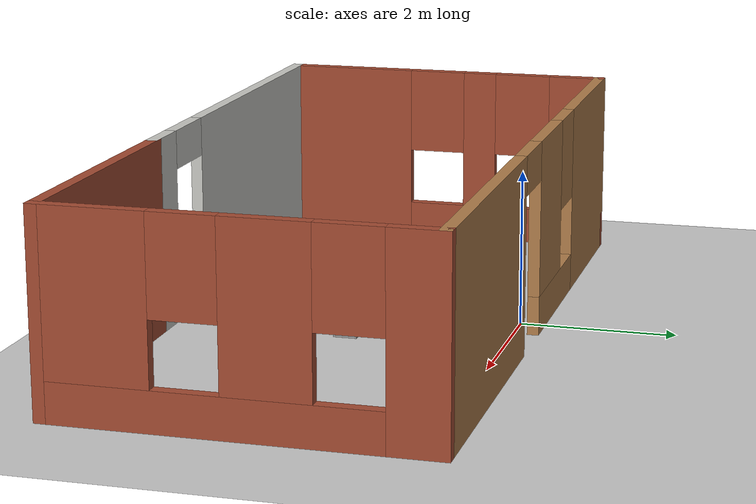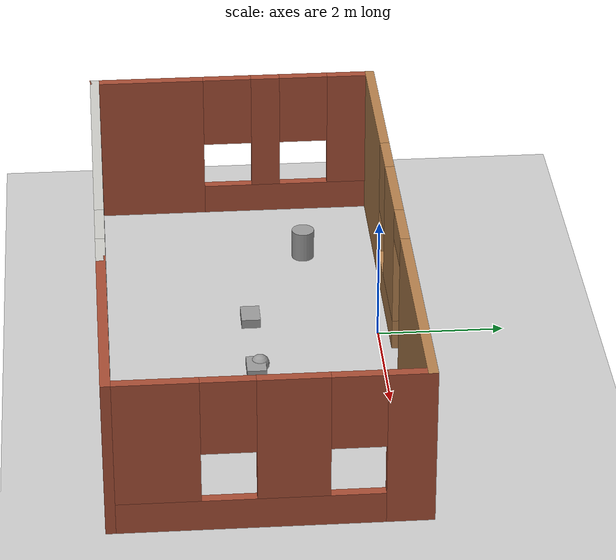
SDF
<sdf version="1.6">
 <world name="default">
  <light name="sun" type="directional">
   <pose>0 0 10 0 -0 0</pose>
   <diffuse>0.8 0.8 0.8 1</diffuse>
   <specular>0.1 0.1 0.1 1</specular>
   <attenuation>
    <range>1000</range>
    <constant>0.9</constant>
    <linear>0.01</linear>
    <quadratic>0.001</quadratic>
   </attenuation>
   <direction>-0.5 0.5 -1</direction>
  </light>
  <model name="ground_plane">
   <static>1</static>
   <link name="link">
    <collision name="collision">
     <geometry><plane><normal>0 0 1</normal><size>100 100</size></plane></geometry>
     <surface><friction><ode><mu>100</mu><mu2>50</mu2></ode></friction></surface>
    </collision>
    <visual name="visual">
     <cast_shadows>0</cast_shadows>
     <geometry><plane><normal>0 0 1</normal><size>100 100</size></plane></geometry>
     <material>
      <script><uri>file://media/materials/scripts/gazebo.material</uri><name>Gazebo/Grey</name></script>
     </material>
    </visual>
   </link>
  </model>
  <gravity>0 0 -9.8</gravity>
  <magnetic_field>6e-06 2.3e-05 -4.2e-05</magnetic_field>
  <atmosphere type="adiabatic"/>
  <physics name="default_physics" default="0" type="ode">
   <max_step_size>0.001</max_step_size>
   <real_time_factor>1</real_time_factor>
   <real_time_update_rate>1000</real_time_update_rate>
  </physics>
  <scene><ambient>0.4 0.4 0.4 1</ambient><background>0.7 0.7 0.7 1</background><shadows>1</shadows></scene>
  <spherical_coordinates>
   <surface_model>EARTH_WGS84</surface_model>
   <latitude_deg>0</latitude_deg>
   <longitude_deg>0</longitude_deg>
   <elevation>0</elevation>
   <heading_deg>0</heading_deg>
  </spherical_coordinates>
  <model name="Room_on">
   <pose>0.425 -2.05 0 0 -0 0</pose>
   <link name="Wall_1">
    <pose>-1.75 -2.3 0 0 -0 0</pose>
    <visual name="Wall_1_Visual_0">
     <pose>-0.783904 0 1.25 0 -0 0</pose>
     <geometry><box><size>4.43219 0.15 2.5</size></box></geometry>
     <material>
      <script><uri>file://media/materials/scripts/gazebo.material</uri><name>Gazebo/CeilingTiled</name></script>
      <ambient>1 1 1 1</ambient>
     </material>
    </visual>
    <collision name="Wall_1_Collision_0">
     <geometry><box><size>4.43219 0.15 2.5</size></box></geometry>
     <pose>-0.783904 0 1.25 0 -0 0</pose>
    </collision>
    <visual name="Wall_1_Visual_1">
     <pose>2.6661 0 1.25 0 -0 0</pose>
     <geometry><box><size>0.667807 0.15 2.5</size></box></geometry>
     <material>
      <script><uri>file://media/materials/scripts/gazebo.material</uri><name>Gazebo/CeilingTiled</name></script>
      <ambient>1 1 1 1</ambient>
     </material>
    </visual>
    <collision name="Wall_1_Collision_1">
     <geometry><box><size>0.667807 0.15 2.5</size></box></geometry>
     <pose>2.6661 0 1.25 0 -0 0</pose>
    </collision>
    <visual name="Wall_1_Visual_2">
     <pose>1.88219 0 2.25 0 -0 0</pose>
     <geometry><box><size>0.9 0.15 0.5</size></box></geometry>
     <material>
      <script><uri>file://media/materials/scripts/gazebo.material</uri><name>Gazebo/CeilingTiled</name></script>
      <ambient>1 1 1 1</ambient>
     </material>
    </visual>
    <collision name="Wall_1_Collision_2">
     <geometry><box><size>0.9 0.15 0.5</size></box></geometry>
     <pose>1.88219 0 2.25 0 -0 0</pose>
    </collision>
   </link>
   <link name="Wall_10">
    <pose>4.675 0 0 0 0 -1.5708</pose>
    <visual name="Wall_10_Visual_0">
     <pose>-2.02052 0 1.25 0 -0 0</pose>
     <geometry><box><size>0.708964 0.15 2.5</size></box></geometry>
     <material>
      <script><uri>file://media/materials/scripts/gazebo.material</uri><name>Gazebo/Bricks</name></script>
      <ambient>1 1 1 1</ambient>
     </material>
    </visual>
    <collision name="Wall_10_Collision_0">
     <geometry><box><size>0.708964 0.15 2.5</size></box></geometry>
     <pose>-2.02052 0 1.25 0 -0 0</pose>
    </collision>
    <visual name="Wall_10_Visual_1">
     <pose>0.354482 0 0.25 0 -0 0</pose>
     <geometry><box><size>4.04104 0.15 0.5</size></box></geometry>
     <material>
      <script><uri>file://media/materials/scripts/gazebo.material</uri><name>Gazebo/Bricks</name></script>
      <ambient>1 1 1 1</ambient>
     </material>
    </visual>
    <collision name="Wall_10_Collision_1">
     <geometry><box><size>4.04104 0.15 0.5</size></box></geometry>
     <pose>0.354482 0 0.25 0 -0 0</pose>
    </collision>
    <visual name="Wall_10_Visual_2">
     <pose>-0.339063 0 1.5 0 -0 0</pose>
     <geometry><box><size>1.05395 0.15 2</size></box></geometry>
     <material>
      <script><uri>file://media/materials/scripts/gazebo.material</uri><name>Gazebo/Bricks</name></script>
      <ambient>1 1 1 1</ambient>
     </material>
    </visual>
    <collision name="Wall_10_Collision_2">
     <geometry><box><size>1.05395 0.15 2</size></box></geometry>
     <pose>-0.339063 0 1.5 0 -0 0</pose>
    </collision>
    <visual name="Wall_10_Visual_3">
     <pose>1.68145 0 1.5 0 -0 0</pose>
     <geometry><box><size>1.38709 0.15 2</size></box></geometry>
     <material>
      <script><uri>file://media/materials/scripts/gazebo.material</uri><name>Gazebo/Bricks</name></script>
      <ambient>1 1 1 1</ambient>
     </material>
    </visual>
    <collision name="Wall_10_Collision_3">
     <geometry><box><size>1.38709 0.15 2</size></box></geometry>
     <pose>1.68145 0 1.5 0 -0 0</pose>
    </collision>
    <visual name="Wall_10_Visual_4">
     <pose>-1.26604 0 1.9 0 -0 0</pose>
     <geometry><box><size>0.8 0.15 1.2</size></box></geometry>
     <material>
      <script><uri>file://media/materials/scripts/gazebo.material</uri><name>Gazebo/Bricks</name></script>
      <ambient>1 1 1 1</ambient>
     </material>
    </visual>
    <collision name="Wall_10_Collision_4">
     <geometry><box><size>0.8 0.15 1.2</size></box></geometry>
     <pose>-1.26604 0 1.9 0 -0 0</pose>
    </collision>
    <visual name="Wall_10_Visual_5">
     <pose>0.58791 0 1.9 0 -0 0</pose>
     <geometry><box><size>0.8 0.15 1.2</size></box></geometry>
     <material>
      <script><uri>file://media/materials/scripts/gazebo.material</uri><name>Gazebo/Bricks</name></script>
      <ambient>1 1 1 1</ambient>
     </material>
    </visual>
    <collision name="Wall_10_Collision_5">
     <geometry><box><size>0.8 0.15 1.2</size></box></geometry>
     <pose>0.58791 0 1.9 0 -0 0</pose>
    </collision>
   </link>
   <link name="Wall_11">
    <collision name="Wall_11_Collision">
     <geometry><box><size>3.65 0.15 2.5</size></box></geometry>
     <pose>0 0 1.25 0 -0 0</pose>
    </collision>
    <visual name="Wall_11_Visual">
     <pose>0 0 1.25 0 -0 0</pose>
     <geometry><box><size>3.65 0.15 2.5</size></box></geometry>
     <material>
      <script><uri>file://media/materials/scripts/gazebo.material</uri><name>Gazebo/Bricks</name></script>
      <ambient>1 1 1 1</ambient>
     </material>
    </visual>
    <pose>2.925 -2.3 0 0 -0 3.14159</pose>
   </link>
   <link name="Wall_8">
    <pose>-4.675 0 0 0 -0 1.5708</pose>
    <visual name="Wall_8_Visual_0">
     <pose>-1.43659 0 1.25 0 -0 0</pose>
     <geometry><box><size>1.87681 0.15 2.5</size></box></geometry>
     <material>
      <script><uri>file://media/materials/scripts/gazebo.material</uri><name>Gazebo/Bricks</name></script>
      <ambient>0.760784 0.662745 0.627451 1</ambient>
     </material>
    </visual>
    <collision name="Wall_8_Collision_0">
     <geometry><box><size>1.87681 0.15 2.5</size></box></geometry>
     <pose>-1.43659 0 1.25 0 -0 0</pose>
    </collision>
    <visual name="Wall_8_Visual_1">
     <pose>0.938406 0 0.25 0 -0 0</pose>
     <geometry><box><size>2.87319 0.15 0.5</size></box></geometry>
     <material>
      <script><uri>file://media/materials/scripts/gazebo.material</uri><name>Gazebo/Bricks</name></script>
      <ambient>0.760784 0.662745 0.627451 1</ambient>
     </material>
    </visual>
    <collision name="Wall_8_Collision_1">
     <geometry><box><size>2.87319 0.15 0.5</size></box></geometry>
     <pose>0.938406 0 0.25 0 -0 0</pose>
    </collision>
    <visual name="Wall_8_Visual_2">
     <pose>0.540199 0 1.5 0 -0 0</pose>
     <geometry><box><size>0.476775 0.15 2</size></box></geometry>
     <material>
      <script><uri>file://media/materials/scripts/gazebo.material</uri><name>Gazebo/Bricks</name></script>
      <ambient>0.760784 0.662745 0.627451 1</ambient>
     </material>
    </visual>
    <collision name="Wall_8_Collision_2">
     <geometry><box><size>0.476775 0.15 2</size></box></geometry>
     <pose>0.540199 0 1.5 0 -0 0</pose>
    </collision>
    <visual name="Wall_8_Visual_3">
     <pose>1.97679 0 1.5 0 -0 0</pose>
     <geometry><box><size>0.796414 0.15 2</size></box></geometry>
     <material>
      <script><uri>file://media/materials/scripts/gazebo.material</uri><name>Gazebo/Bricks</name></script>
      <ambient>0.760784 0.662745 0.627451 1</ambient>
     </material>
    </visual>
    <collision name="Wall_8_Collision_3">
     <geometry><box><size>0.796414 0.15 2</size></box></geometry>
     <pose>1.97679 0 1.5 0 -0 0</pose>
    </collision>
    <visual name="Wall_8_Visual_4">
     <pose>-0.098188 0 1.9 0 -0 0</pose>
     <geometry><box><size>0.8 0.15 1.2</size></box></geometry>
     <material>
      <script><uri>file://media/materials/scripts/gazebo.material</uri><name>Gazebo/Bricks</name></script>
      <ambient>0.760784 0.662745 0.627451 1</ambient>
     </material>
    </visual>
    <collision name="Wall_8_Collision_4">
     <geometry><box><size>0.8 0.15 1.2</size></box></geometry>
     <pose>-0.098188 0 1.9 0 -0 0</pose>
    </collision>
    <visual name="Wall_8_Visual_5">
     <pose>1.17859 0 1.9 0 -0 0</pose>
     <geometry><box><size>0.8 0.15 1.2</size></box></geometry>
     <material>
      <script><uri>file://media/materials/scripts/gazebo.material</uri><name>Gazebo/Bricks</name></script>
      <ambient>0.760784 0.662745 0.627451 1</ambient>
     </material>
    </visual>
    <collision name="Wall_8_Collision_5">
     <geometry><box><size>0.8 0.15 1.2</size></box></geometry>
     <pose>1.17859 0 1.9 0 -0 0</pose>
    </collision>
   </link>
   <link name="Wall_9">
    <pose>0 2.3 0 0 -0 0</pose>
    <visual name="Wall_9_Visual_0">
     <pose>-3.46211 0 1.25 0 -0 0</pose>
     <geometry><box><size>2.57578 0.15 2.5</size></box></geometry>
     <material>
      <script><uri>file://media/materials/scripts/gazebo.material</uri><name>Gazebo/Wood</name></script>
      <ambient>0.996078 0.47451 0.0196078 1</ambient>
     </material>
    </visual>
    <collision name="Wall_9_Collision_0">
     <geometry><box><size>2.57578 0.15 2.5</size></box></geometry>
     <pose>-3.46211 0 1.25 0 -0 0</pose>
    </collision>
    <visual name="Wall_9_Visual_1">
     <pose>2.841 0 1.25 0 -0 0</pose>
     <geometry><box><size>3.81801 0.15 2.5</size></box></geometry>
     <material>
      <script><uri>file://media/materials/scripts/gazebo.material</uri><name>Gazebo/Wood</name></script>
      <ambient>0.996078 0.47451 0.0196078 1</ambient>
     </material>
    </visual>
    <collision name="Wall_9_Collision_1">
     <geometry><box><size>3.81801 0.15 2.5</size></box></geometry>
     <pose>2.841 0 1.25 0 -0 0</pose>
    </collision>
    <visual name="Wall_9_Visual_2">
     <pose>-1.07112 0 0.25 0 -0 0</pose>
     <geometry><box><size>2.20622 0.15 0.5</size></box></geometry>
     <material>
      <script><uri>file://media/materials/scripts/gazebo.material</uri><name>Gazebo/Wood</name></script>
      <ambient>0.996078 0.47451 0.0196078 1</ambient>
     </material>
    </visual>
    <collision name="Wall_9_Collision_2">
     <geometry><box><size>2.20622 0.15 0.5</size></box></geometry>
     <pose>-1.07112 0 0.25 0 -0 0</pose>
    </collision>
    <visual name="Wall_9_Visual_3">
     <pose>-0.671115 0 1.5 0 -0 0</pose>
     <geometry><box><size>1.40622 0.15 2</size></box></geometry>
     <material>
      <script><uri>file://media/materials/scripts/gazebo.material</uri><name>Gazebo/Wood</name></script>
      <ambient>0.996078 0.47451 0.0196078 1</ambient>
     </material>
    </visual>
    <collision name="Wall_9_Collision_3">
     <geometry><box><size>1.40622 0.15 2</size></box></geometry>
     <pose>-0.671115 0 1.5 0 -0 0</pose>
    </collision>
    <visual name="Wall_9_Visual_4">
     <pose>-1.77422 0 1.9 0 -0 0</pose>
     <geometry><box><size>0.8 0.15 1.2</size></box></geometry>
     <material>
      <script><uri>file://media/materials/scripts/gazebo.material</uri><name>Gazebo/Wood</name></script>
      <ambient>0.996078 0.47451 0.0196078 1</ambient>
     </material>
    </visual>
    <collision name="Wall_9_Collision_4">
     <geometry><box><size>0.8 0.15 1.2</size></box></geometry>
     <pose>-1.77422 0 1.9 0 -0 0</pose>
    </collision>
    <visual name="Wall_9_Visual_5">
     <pose>0.481994 0 2.25 0 -0 0</pose>
     <geometry><box><size>0.9 0.15 0.5</size></box></geometry>
     <material>
      <script><uri>file://media/materials/scripts/gazebo.material</uri><name>Gazebo/Wood</name></script>
      <ambient>0.996078 0.47451 0.0196078 1</ambient>
     </material>
    </visual>
    <collision name="Wall_9_Collision_5">
     <geometry><box><size>0.9 0.15 0.5</size></box></geometry>
     <pose>0.481994 0 2.25 0 -0 0</pose>
    </collision>
   </link>
   <static>1</static>
  </model>
  <model name="random">
   <link name="link_0">
    <pose>-2.27302 0.733175 0 0 -0 0</pose>
    <inertial>
     <mass>0.108803</mass>
     <inertia>
      <ixx>0.00678921</ixx>
      <ixy>0</ixy>
      <ixz>0</ixz>
      <iyy>0.00678921</iyy>
      <iyz>0</iyz>
      <izz>0.00183915</izz>
     </inertia>
    </inertial>
    <visual name="visual">
     <geometry><cylinder><radius>0.183881</radius><length>0.804593</length></cylinder></geometry>
     <material>
      <lighting>1</lighting>
      <script><uri>file://media/materials/scripts/gazebo.material</uri><name>Gazebo/Grey</name></script>
      <ambient>0.3 0.3 0.3 1</ambient>
      <diffuse>0.7 0.7 0.7 1</diffuse>
      <specular>0.01 0.01 0.01 1</specular>
      <emissive>0 0 0 1</emissive>
     </material>
    </visual>
    <collision name="collision">
     <geometry><cylinder><radius>0.183881</radius><length>0.804593</length></cylinder></geometry>
     <surface>
      <friction>
       <ode><mu>1</mu><mu2>1</mu2><fdir1>0 0 0</fdir1><slip1>0</slip1><slip2>0</slip2></ode>
       <torsional>
        <coefficient>1</coefficient>
        <patch_radius>0</patch_radius>
        <surface_radius>0</surface_radius>
        <use_patch_radius>1</use_patch_radius>
        <ode><slip>0</slip></ode>
       </torsional>
      </friction>
      <bounce><restitution_coefficient>0</restitution_coefficient><threshold>1e+06</threshold></bounce>
      <contact>
       <collide_without_contact>0</collide_without_contact>
       <collide_without_contact_bitmask>1</collide_without_contact_bitmask>
       <collide_bitmask>1</collide_bitmask>
       <ode>
        <soft_cfm>0</soft_cfm>
        <soft_erp>0.2</soft_erp>
        <kp>1e+13</kp>
        <kd>1</kd>
        <max_vel>0.01</max_vel>
        <min_depth>0</min_depth>
       </ode>
       <bullet>
        <split_impulse>1</split_impulse>
        <split_impulse_penetration_threshold>-0.01</split_impulse_penetration_threshold>
        <soft_cfm>0</soft_cfm>
        <soft_erp>0.2</soft_erp>
        <kp>1e+13</kp>
        <kd>1</kd>
       </bullet>
      </contact>
     </surface>
    </collision>
   </link>
   <link name="link_2">
    <pose>-0.217787 -0.266825 0 0 -0 0</pose>
    <inertial>
     <mass>0.0196846</mass>
     <inertia>
      <ixx>0.000187313</ixx>
      <ixy>0</ixy>
      <ixz>0</ixz>
      <iyy>0.000349073</iyy>
      <iyz>0</iyz>
      <izz>0.00046406</izz>
     </inertia>
    </inertial>
    <visual name="visual">
     <geometry><box><size>0.436757 0.303537 0.148484</size></box></geometry>
     <material>
      <lighting>1</lighting>
      <script><uri>file://media/materials/scripts/gazebo.material</uri><name>Gazebo/Grey</name></script>
      <ambient>0.3 0.3 0.3 1</ambient>
      <diffuse>0.7 0.7 0.7 1</diffuse>
      <specular>0.01 0.01 0.01 1</specular>
      <emissive>0 0 0 1</emissive>
     </material>
    </visual>
    <collision name="collision">
     <geometry><box><size>0.436757 0.303537 0.148484</size></box></geometry>
     <surface>
      <friction>
       <ode><mu>1</mu><mu2>1</mu2><fdir1>0 0 0</fdir1><slip1>0</slip1><slip2>0</slip2></ode>
       <torsional>
        <coefficient>1</coefficient>
        <patch_radius>0</patch_radius>
        <surface_radius>0</surface_radius>
        <use_patch_radius>1</use_patch_radius>
        <ode><slip>0</slip></ode>
       </torsional>
      </friction>
      <bounce><restitution_coefficient>0</restitution_coefficient><threshold>1e+06</threshold></bounce>
      <contact>
       <collide_without_contact>0</collide_without_contact>
       <collide_without_contact_bitmask>1</collide_without_contact_bitmask>
       <collide_bitmask>1</collide_bitmask>
       <ode>
        <soft_cfm>0</soft_cfm>
        <soft_erp>0.2</soft_erp>
        <kp>1e+13</kp>
        <kd>1</kd>
        <max_vel>0.01</max_vel>
        <min_depth>0</min_depth>
       </ode>
       <bullet>
        <split_impulse>1</split_impulse>
        <split_impulse_penetration_threshold>-0.01</split_impulse_penetration_threshold>
        <soft_cfm>0</soft_cfm>
        <soft_erp>0.2</soft_erp>
        <kp>1e+13</kp>
        <kd>1</kd>
       </bullet>
      </contact>
     </surface>
    </collision>
   </link>
   <link name="link_2_clone">
    <pose>1.30475 -0.266825 0 0 -0 0</pose>
    <inertial>
     <mass>0.0196846</mass>
     <inertia>
      <ixx>0.000187313</ixx>
      <ixy>0</ixy>
      <ixz>0</ixz>
      <iyy>0.000349073</iyy>
      <iyz>0</iyz>
      <izz>0.00046406</izz>
     </inertia>
    </inertial>
    <visual name="visual">
     <geometry><box><size>0.436757 0.303537 0.148484</size></box></geometry>
     <material>
      <lighting>1</lighting>
      <script><uri>file://media/materials/scripts/gazebo.material</uri><name>Gazebo/Grey</name></script>
      <ambient>0.3 0.3 0.3 1</ambient>
      <diffuse>0.7 0.7 0.7 1</diffuse>
      <specular>0.01 0.01 0.01 1</specular>
      <emissive>0 0 0 1</emissive>
      <shader type="pixel"/>
     </material>
    </visual>
    <collision name="collision">
     <geometry><box><size>0.436757 0.303537 0.148484</size></box></geometry>
     <surface>
      <friction>
       <ode><mu>1</mu><mu2>1</mu2><fdir1>0 0 0</fdir1><slip1>0</slip1><slip2>0</slip2></ode>
       <torsional>
        <coefficient>1</coefficient>
        <patch_radius>0</patch_radius>
        <surface_radius>0</surface_radius>
        <use_patch_radius>1</use_patch_radius>
        <ode><slip>0</slip></ode>
       </torsional>
      </friction>
      <bounce><restitution_coefficient>0</restitution_coefficient><threshold>1e+06</threshold></bounce>
      <contact>
       <collide_without_contact>0</collide_without_contact>
       <collide_without_contact_bitmask>1</collide_without_contact_bitmask>
       <collide_bitmask>1</collide_bitmask>
       <ode>
        <soft_cfm>0</soft_cfm>
        <soft_erp>0.2</soft_erp>
        <kp>1e+13</kp>
        <kd>1</kd>
        <max_vel>0.01</max_vel>
        <min_depth>0</min_depth>
       </ode>
       <bullet>
        <split_impulse>1</split_impulse>
        <split_impulse_penetration_threshold>-0.01</split_impulse_penetration_threshold>
        <soft_cfm>0</soft_cfm>
        <soft_erp>0.2</soft_erp>
        <kp>1e+13</kp>
        <kd>1</kd>
       </bullet>
      </contact>
     </surface>
    </collision>
   </link>
   <link name="link_3">
    <pose>1.18605 -0.199525 0 0 -0 0</pose>
    <inertial>
     <mass>0.0259482</mass>
     <inertia>
      <ixx>0.000227429</ixx>
      <ixy>0</ixy>
      <ixz>0</ixz>
      <iyy>0.000227429</iyy>
      <iyz>0</iyz>
      <izz>0.000227429</izz>
     </inertia>
    </inertial>
    <visual name="visual">
     <geometry><sphere><radius>0.148029</radius></sphere></geometry>
     <material>
      <lighting>1</lighting>
      <script><uri>file://media/materials/scripts/gazebo.material</uri><name>Gazebo/Grey</name></script>
      <ambient>0.3 0.3 0.3 1</ambient>
      <diffuse>0.7 0.7 0.7 1</diffuse>
      <specular>0.01 0.01 0.01 1</specular>
      <emissive>0 0 0 1</emissive>
     </material>
    </visual>
    <collision name="collision">
     <geometry><sphere><radius>0.148029</radius></sphere></geometry>
     <surface>
      <friction>
       <ode><mu>1</mu><mu2>1</mu2><fdir1>0 0 0</fdir1><slip1>0</slip1><slip2>0</slip2></ode>
       <torsional>
        <coefficient>1</coefficient>
        <patch_radius>0</patch_radius>
        <surface_radius>0</surface_radius>
        <use_patch_radius>1</use_patch_radius>
        <ode><slip>0</slip></ode>
       </torsional>
      </friction>
      <bounce><restitution_coefficient>0</restitution_coefficient><threshold>1e+06</threshold></bounce>
      <contact>
       <collide_without_contact>0</collide_without_contact>
       <collide_without_contact_bitmask>1</collide_without_contact_bitmask>
       <collide_bitmask>1</collide_bitmask>
       <ode>
        <soft_cfm>0</soft_cfm>
        <soft_erp>0.2</soft_erp>
        <kp>1e+13</kp>
        <kd>1</kd>
        <max_vel>0.01</max_vel>
        <min_depth>0</min_depth>
       </ode>
       <bullet>
        <split_impulse>1</split_impulse>
        <split_impulse_penetration_threshold>-0.01</split_impulse_penetration_threshold>
        <soft_cfm>0</soft_cfm>
        <soft_erp>0.2</soft_erp>
        <kp>1e+13</kp>
        <kd>1</kd>
       </bullet>
      </contact>
     </surface>
    </collision>
   </link>
   <static>0</static>
   <pose>-0.304748 -1.73317 0.082855 0 -0 0</pose>
  </model>
 </world>
</sdf>
